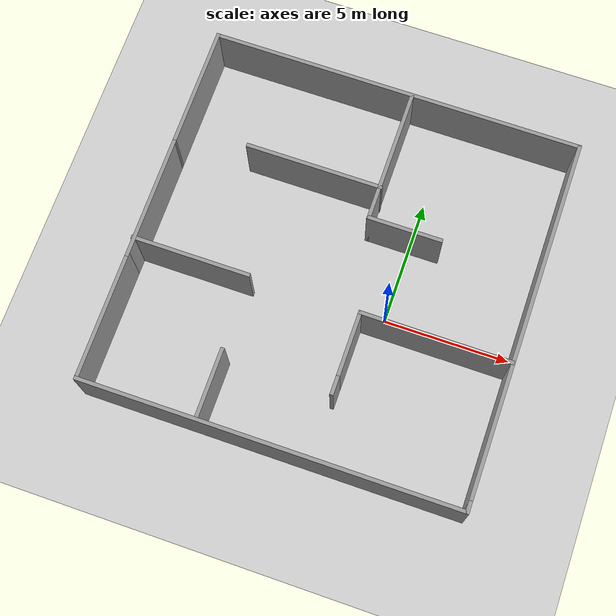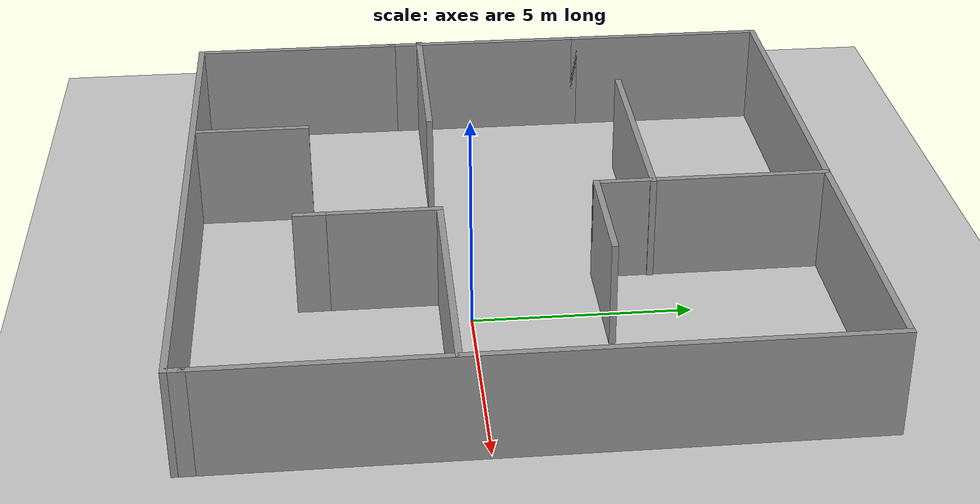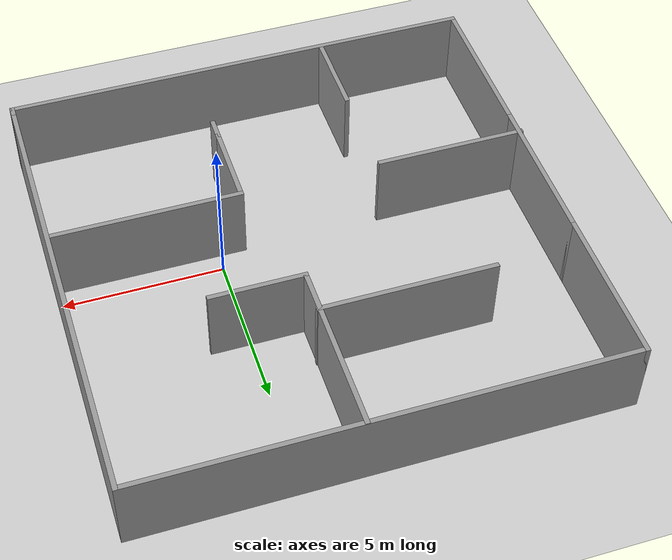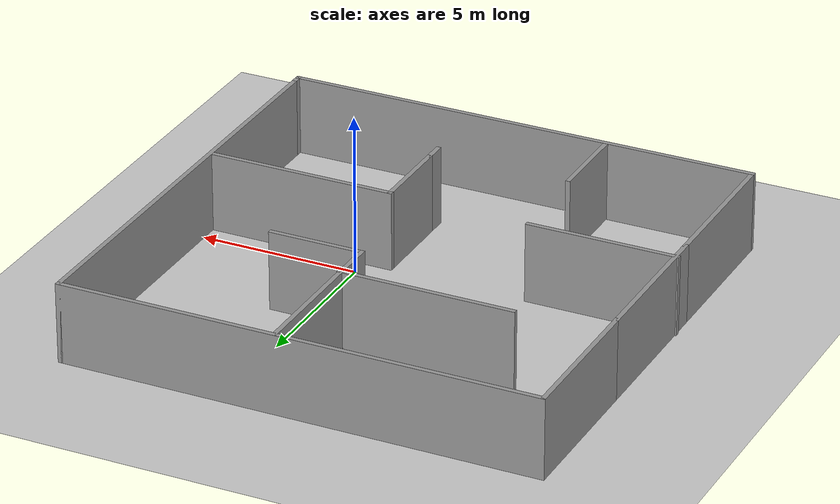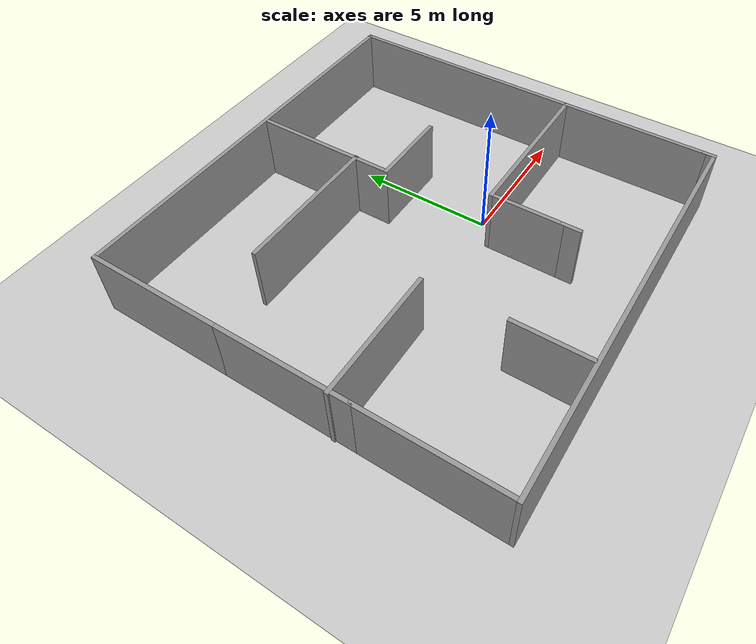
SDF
<sdf version="1.7">
 <world name="default">
  <light name="sun" type="directional">
   <pose>0 0 10 0 -0 0</pose>
   <diffuse>0.8 0.8 0.8 1</diffuse>
   <specular>0.2 0.2 0.2 1</specular>
   <attenuation>
    <range>1000</range>
    <constant>0.9</constant>
    <linear>0.01</linear>
    <quadratic>0.001</quadratic>
   </attenuation>
   <direction>-0.5 0.1 -0.9</direction>
   <spot><inner_angle>0</inner_angle><outer_angle>0</outer_angle><falloff>0</falloff></spot>
  </light>
  <model name="ground_plane">
   <static>1</static>
   <link name="link">
    <collision name="collision">
     <geometry><plane><normal>0 0 1</normal><size>100 100</size></plane></geometry>
     <surface>
      <contact><collide_bitmask>65535</collide_bitmask></contact>
      <friction><ode><mu>100</mu><mu2>50</mu2></ode></friction>
     </surface>
    </collision>
    <visual name="visual">
     <cast_shadows>0</cast_shadows>
     <geometry><plane><normal>0 0 1</normal><size>100 100</size></plane></geometry>
     <material>
      <script><uri>file://media/materials/scripts/gazebo.material</uri><name>Gazebo/Grey</name></script>
     </material>
    </visual>
   </link>
  </model>
  <gravity>0 0 -9.8</gravity>
  <magnetic_field>6e-06 2.3e-05 -4.2e-05</magnetic_field>
  <atmosphere type="adiabatic"/>
  <physics type="ode">
   <max_step_size>0.001</max_step_size>
   <real_time_factor>1</real_time_factor>
   <real_time_update_rate>1000</real_time_update_rate>
  </physics>
  <scene><ambient>0.4 0.4 0.4 1</ambient><background>0.7 0.7 0.7 1</background><shadows>1</shadows></scene>
  <audio><device>default</device></audio>
  <spherical_coordinates>
   <surface_model>EARTH_WGS84</surface_model>
   <latitude_deg>0</latitude_deg>
   <longitude_deg>0</longitude_deg>
   <elevation>0</elevation>
   <heading_deg>0</heading_deg>
  </spherical_coordinates>
  <model name="edgar">
   <pose>-2.39271 1.0239 0 0 -0 0</pose>
   <link name="Wall_10">
    <collision name="Wall_10_Collision">
     <geometry><box><size>14.5 0.15 2.5</size></box></geometry>
     <pose>0 0 1.25 0 -0 0</pose>
    </collision>
    <visual name="Wall_10_Visual">
     <pose>0 0 1.25 0 -0 0</pose>
     <geometry><box><size>14.5 0.15 2.5</size></box></geometry>
     <material>
      <script><uri>file://media/materials/scripts/gazebo.material</uri><name>Gazebo/Grey</name></script>
      <ambient>1 1 1 1</ambient>
     </material>
     <meta><layer>0</layer></meta>
    </visual>
    <pose>7.44635 0.174999 0 0 -0 -1.5708</pose>
   </link>
   <link name="Wall_11">
    <collision name="Wall_11_Collision">
     <geometry><box><size>0.5 0.15 2.5</size></box></geometry>
     <pose>0 0 1.25 0 -0 0</pose>
    </collision>
    <visual name="Wall_11_Visual">
     <pose>0 0 1.25 0 -0 0</pose>
     <geometry><box><size>0.5 0.15 2.5</size></box></geometry>
     <material>
      <script><uri>file://media/materials/scripts/gazebo.material</uri><name>Gazebo/Grey</name></script>
      <ambient>1 1 1 1</ambient>
     </material>
     <meta><layer>0</layer></meta>
    </visual>
    <pose>7.44635 -7.175 0 0 -0 -1.5708</pose>
   </link>
   <link name="Wall_12">
    <collision name="Wall_12_Collision">
     <geometry><box><size>15.0008 0.15 2.5</size></box></geometry>
     <pose>0 0 1.25 0 -0 0</pose>
    </collision>
    <visual name="Wall_12_Visual">
     <pose>0 0 1.25 0 -0 0</pose>
     <geometry><box><size>15.0008 0.15 2.5</size></box></geometry>
     <material>
      <script><uri>file://media/materials/scripts/gazebo.material</uri><name>Gazebo/Grey</name></script>
      <ambient>1 1 1 1</ambient>
     </material>
     <meta><layer>0</layer></meta>
    </visual>
    <pose>0.021351 -7.35 0 0 -0 3.14159</pose>
   </link>
   <link name="Wall_14">
    <collision name="Wall_14_Collision">
     <geometry><box><size>5.5 0.15 2.5</size></box></geometry>
     <pose>0 0 1.25 0 -0 0</pose>
    </collision>
    <visual name="Wall_14_Visual">
     <pose>0 0 1.25 0 -0 0</pose>
     <geometry><box><size>5.5 0.15 2.5</size></box></geometry>
     <material>
      <script><uri>file://media/materials/scripts/gazebo.material</uri><name>Gazebo/Grey</name></script>
      <ambient>1 1 1 1</ambient>
     </material>
     <meta><layer>0</layer></meta>
    </visual>
    <pose>0.682182 4.6575 0 0 -0 -1.5708</pose>
   </link>
   <link name="Wall_15">
    <collision name="Wall_15_Collision">
     <geometry><box><size>3 0.15 2.5</size></box></geometry>
     <pose>0 0 1.25 0 -0 0</pose>
    </collision>
    <visual name="Wall_15_Visual">
     <pose>0 0 1.25 0 -0 0</pose>
     <geometry><box><size>3 0.15 2.5</size></box></geometry>
     <material>
      <script><uri>file://media/materials/scripts/gazebo.material</uri><name>Gazebo/Grey</name></script>
      <ambient>1 1 1 1</ambient>
     </material>
     <meta><layer>0</layer></meta>
    </visual>
    <pose>2.10718 1.9825 0 0 -0 0</pose>
   </link>
   <link name="Wall_18">
    <collision name="Wall_18_Collision">
     <geometry><box><size>6 0.15 2.5</size></box></geometry>
     <pose>0 0 1.25 0 -0 0</pose>
    </collision>
    <visual name="Wall_18_Visual">
     <pose>0 0 1.25 0 -0 0</pose>
     <geometry><box><size>6 0.15 2.5</size></box></geometry>
     <material>
      <script><uri>file://media/materials/scripts/gazebo.material</uri><name>Gazebo/Grey</name></script>
      <ambient>1 1 1 1</ambient>
     </material>
     <meta><layer>0</layer></meta>
    </visual>
    <pose>4.49317 -1.66261 0 0 -0 3.14159</pose>
   </link>
   <link name="Wall_20">
    <collision name="Wall_20_Collision">
     <geometry><box><size>4.75 0.15 2.5</size></box></geometry>
     <pose>0 0 1.25 0 -0 0</pose>
    </collision>
    <visual name="Wall_20_Visual">
     <pose>0 0 1.25 0 -0 0</pose>
     <geometry><box><size>4.75 0.15 2.5</size></box></geometry>
     <material>
      <script><uri>file://media/materials/scripts/gazebo.material</uri><name>Gazebo/Grey</name></script>
      <ambient>1 1 1 1</ambient>
     </material>
     <meta><layer>0</layer></meta>
    </visual>
    <pose>-5.14673 -1.63616 0 0 -0 0</pose>
   </link>
   <link name="Wall_25">
    <collision name="Wall_25_Collision">
     <geometry><box><size>2.75 0.15 2.5</size></box></geometry>
     <pose>0 0 1.25 0 -0 0</pose>
    </collision>
    <visual name="Wall_25_Visual">
     <pose>0 0 1.25 0 -0 0</pose>
     <geometry><box><size>2.75 0.15 2.5</size></box></geometry>
     <material>
      <script><uri>file://media/materials/scripts/gazebo.material</uri><name>Gazebo/Grey</name></script>
      <ambient>1 1 1 1</ambient>
     </material>
     <meta><layer>0</layer></meta>
    </visual>
    <pose>-2.76139 -5.93429 0 0 -0 1.5708</pose>
   </link>
   <link name="Wall_27">
    <collision name="Wall_27_Collision">
     <geometry><box><size>2.75 0.15 2.5</size></box></geometry>
     <pose>0 0 1.25 0 -0 0</pose>
    </collision>
    <visual name="Wall_27_Visual">
     <pose>0 0 1.25 0 -0 0</pose>
     <geometry><box><size>2.75 0.15 2.5</size></box></geometry>
     <material>
      <script><uri>file://media/materials/scripts/gazebo.material</uri><name>Gazebo/Grey</name></script>
      <ambient>1 1 1 1</ambient>
     </material>
     <meta><layer>0</layer></meta>
    </visual>
    <pose>1.56817 -2.96261 0 0 -0 -1.5708</pose>
   </link>
   <link name="Wall_31">
    <collision name="Wall_31_Collision">
     <geometry><box><size>0.75 0.15 2.5</size></box></geometry>
     <pose>0 0 1.25 0 -0 0</pose>
    </collision>
    <visual name="Wall_31_Visual">
     <pose>0 0 1.25 0 -0 0</pose>
     <geometry><box><size>0.75 0.15 2.5</size></box></geometry>
     <material>
      <script><uri>file://media/materials/scripts/gazebo.material</uri><name>Gazebo/Grey</name></script>
      <ambient>1 1 1 1</ambient>
     </material>
     <meta><layer>0</layer></meta>
    </visual>
    <pose>1.56817 -4.56261 0 0 -0 -1.5708</pose>
   </link>
   <link name="Wall_34">
    <collision name="Wall_34_Collision">
     <geometry><box><size>5.5 0.15 2.5</size></box></geometry>
     <pose>0 0 1.25 0 -0 0</pose>
    </collision>
    <visual name="Wall_34_Visual">
     <pose>0 0 1.25 0 -0 0</pose>
     <geometry><box><size>5.5 0.15 2.5</size></box></geometry>
     <material>
      <script><uri>file://media/materials/scripts/gazebo.material</uri><name>Gazebo/Grey</name></script>
      <ambient>1 1 1 1</ambient>
     </material>
     <meta><layer>0</layer></meta>
    </visual>
    <pose>-1.96267 3.28875 0 0 -0 3.14159</pose>
   </link>
   <link name="Wall_5">
    <collision name="Wall_5_Collision">
     <geometry><box><size>5 0.15 2.5</size></box></geometry>
     <pose>0 0 1.25 0 -0 0</pose>
    </collision>
    <visual name="Wall_5_Visual">
     <pose>0 0 1.25 0 -0 0</pose>
     <geometry><box><size>5 0.15 2.5</size></box></geometry>
     <material>
      <script><uri>file://media/materials/scripts/gazebo.material</uri><name>Gazebo/Grey</name></script>
      <ambient>1 1 1 1</ambient>
     </material>
     <meta><layer>0</layer></meta>
    </visual>
    <pose>-7.40365 0.074999 0 0 -0 -1.5708</pose>
   </link>
   <link name="Wall_6">
    <collision name="Wall_6_Collision">
     <geometry><box><size>5 0.15 2.5</size></box></geometry>
     <pose>0 0 1.25 0 -0 0</pose>
    </collision>
    <visual name="Wall_6_Visual">
     <pose>0 0 1.25 0 -0 0</pose>
     <geometry><box><size>5 0.15 2.5</size></box></geometry>
     <material>
      <script><uri>file://media/materials/scripts/gazebo.material</uri><name>Gazebo/Grey</name></script>
      <ambient>1 1 1 1</ambient>
     </material>
     <meta><layer>0</layer></meta>
    </visual>
    <pose>-7.40365 -4.775 0 0 -0 -1.5708</pose>
   </link>
   <link name="Wall_8">
    <collision name="Wall_8_Collision">
     <geometry><box><size>5 0.15 2.5</size></box></geometry>
     <pose>0 0 1.25 0 -0 0</pose>
    </collision>
    <visual name="Wall_8_Visual">
     <pose>0 0 1.25 0 -0 0</pose>
     <geometry><box><size>5 0.15 2.5</size></box></geometry>
     <material>
      <script><uri>file://media/materials/scripts/gazebo.material</uri><name>Gazebo/Grey</name></script>
      <ambient>1 1 1 1</ambient>
     </material>
     <meta><layer>0</layer></meta>
    </visual>
    <pose>-7.40365 4.925 0 0 -0 1.5708</pose>
   </link>
   <link name="Wall_9">
    <collision name="Wall_9_Collision">
     <geometry><box><size>15 0.15 2.5</size></box></geometry>
     <pose>0 0 1.25 0 -0 0</pose>
    </collision>
    <visual name="Wall_9_Visual">
     <pose>0 0 1.25 0 -0 0</pose>
     <geometry><box><size>15 0.15 2.5</size></box></geometry>
     <material>
      <script><uri>file://media/materials/scripts/gazebo.material</uri><name>Gazebo/Grey</name></script>
      <ambient>1 1 1 1</ambient>
     </material>
     <meta><layer>0</layer></meta>
    </visual>
    <pose>0.021351 7.35 0 0 -0 0</pose>
   </link>
   <static>1</static>
  </model>
 </world>
</sdf>
